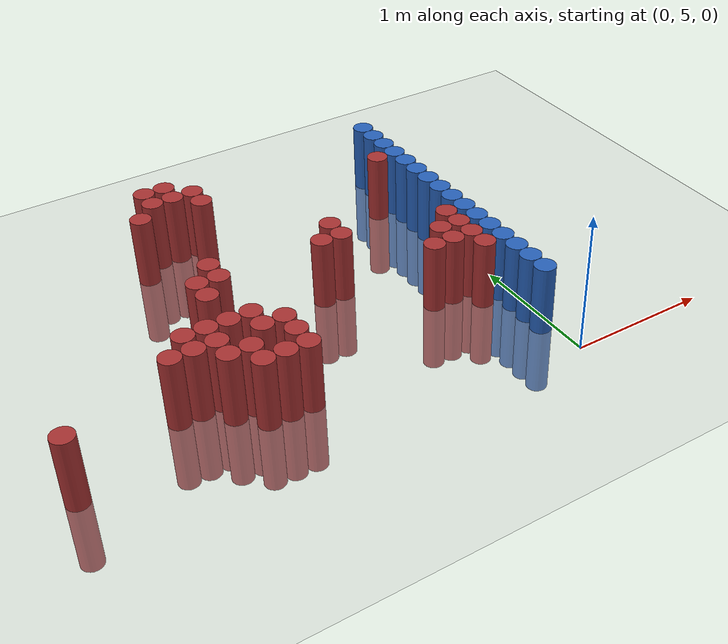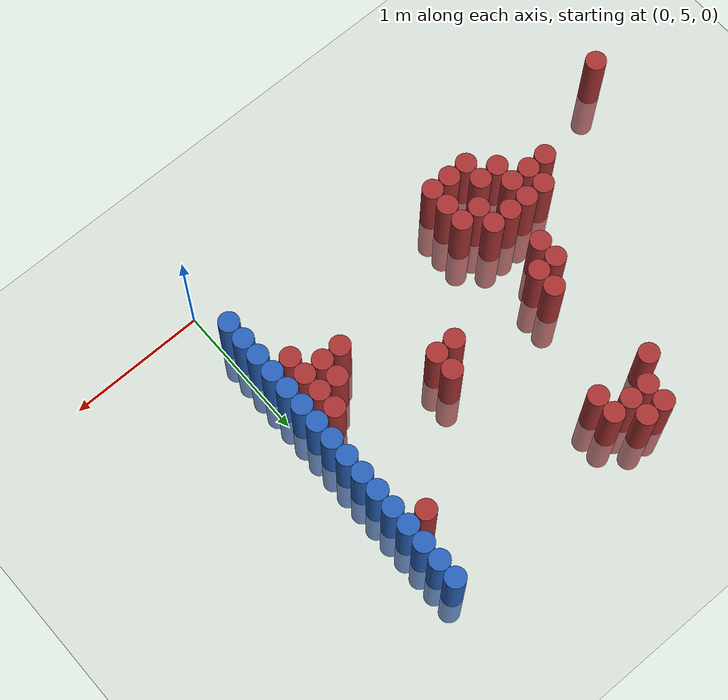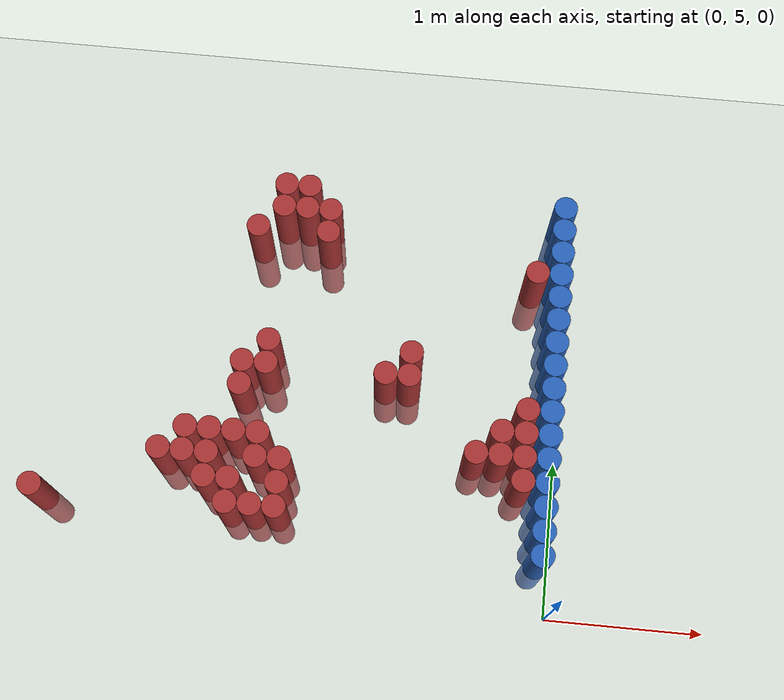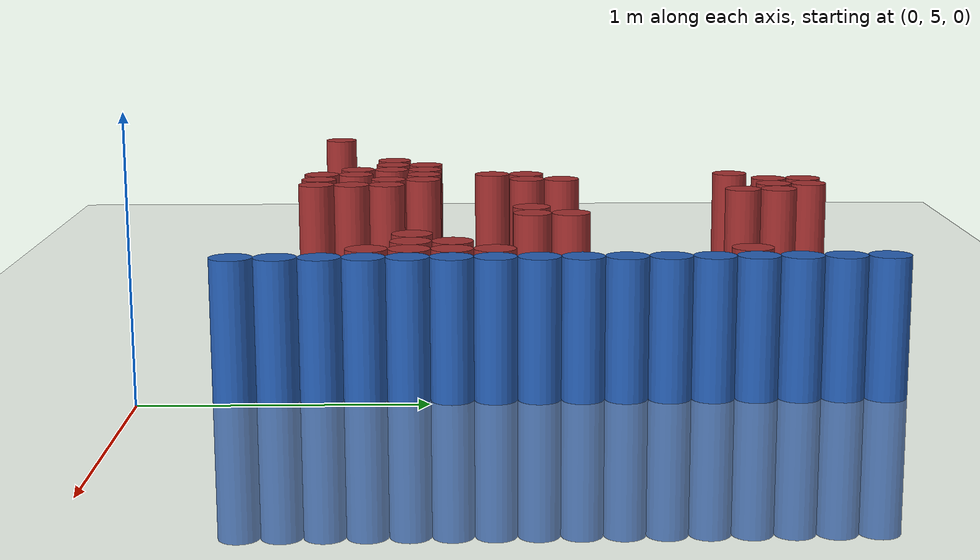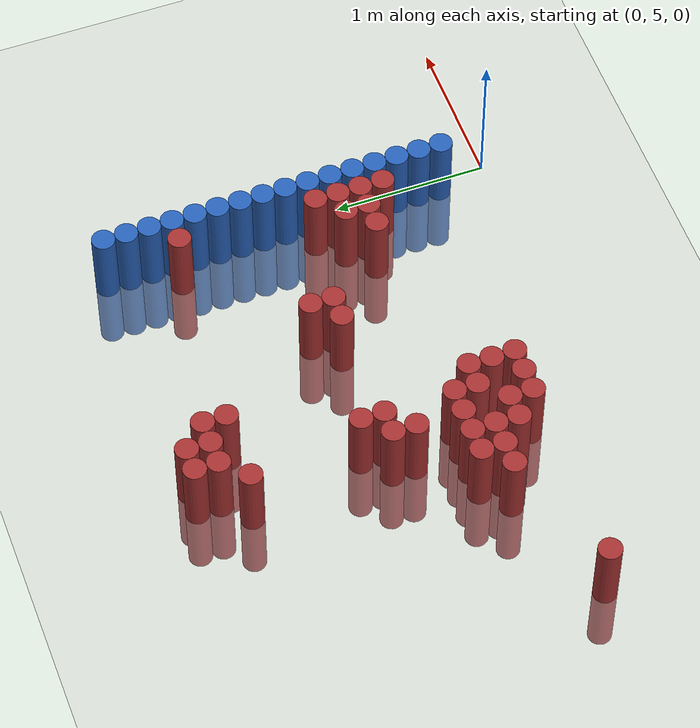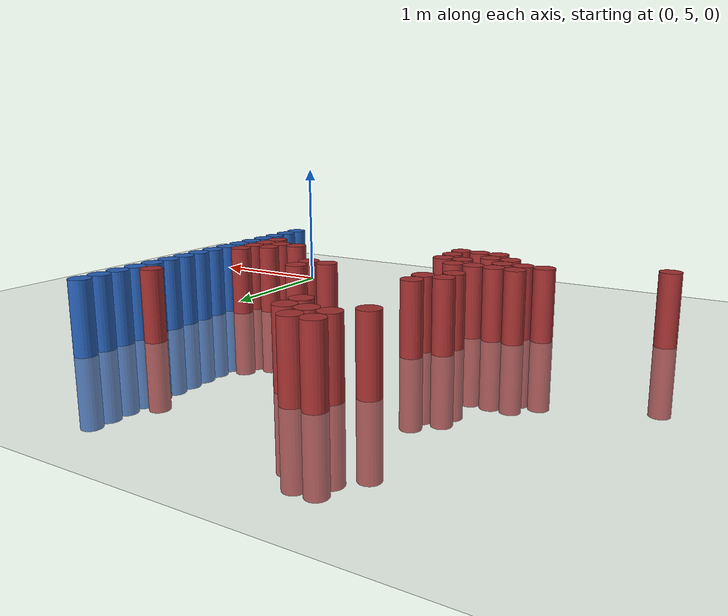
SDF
<sdf version="1.6">
 <world name="default">
  <model name="ground_plane">
   <static>1</static>
   <link name="link">
    <collision name="collision">
     <geometry><plane><normal>0 0 1</normal><size>100 100</size></plane></geometry>
     <surface><friction><ode><mu>100</mu><mu2>50</mu2></ode></friction></surface>
    </collision>
    <visual name="visual">
     <cast_shadows>0</cast_shadows>
     <geometry><plane><normal>0 0 1</normal><size>100 100</size></plane></geometry>
     <material>
      <script><uri>file://media/materials/scripts/gazebo.material</uri><name>Gazebo/Grey</name></script>
     </material>
    </visual>
   </link>
  </model>
  <model name="unit_cylinder_161">
   <static>1</static>
   <pose>-3.225000 5.475000 0.000000 0.000000 0.000000 0.000000</pose>
   <link name="link">
    <inertial>
     <mass>1</mass>
     <inertia><ixx>0.145833</ixx><ixy>0</ixy><ixz>0</ixz><iyy>0.145833</iyy><iyz>0</iyz><izz>0.125</izz></inertia>
    </inertial>
    <collision name="collision">
     <geometry><cylinder><radius>0.075000</radius><length>1</length></cylinder></geometry>
    </collision>
    <visual name="visual">
     <geometry><cylinder><radius>0.075000</radius><length>1</length></cylinder></geometry>
     <material>
      <ambient>0.648000 0.192000 0.192000 1</ambient>
      <diffuse>0.648000 0.192000 0.192000 1</diffuse>
     </material>
     <material>
      <script><name>Gazebo/Grey</name><uri>file://media/materials/scripts/gazebo.material</uri></script>
     </material>
    </visual>
   </link>
  </model>
  <model name="unit_cylinder_167">
   <static>1</static>
   <pose>-2.475000 5.775000 0.000000 0.000000 0.000000 0.000000</pose>
   <link name="link">
    <inertial>
     <mass>1</mass>
     <inertia><ixx>0.145833</ixx><ixy>0</ixy><ixz>0</ixz><iyy>0.145833</iyy><iyz>0</iyz><izz>0.125</izz></inertia>
    </inertial>
    <collision name="collision">
     <geometry><cylinder><radius>0.075000</radius><length>1</length></cylinder></geometry>
    </collision>
    <visual name="visual">
     <geometry><cylinder><radius>0.075000</radius><length>1</length></cylinder></geometry>
     <material>
      <ambient>0.648000 0.192000 0.192000 1</ambient>
      <diffuse>0.648000 0.192000 0.192000 1</diffuse>
     </material>
     <material>
      <script><name>Gazebo/Grey</name><uri>file://media/materials/scripts/gazebo.material</uri></script>
     </material>
    </visual>
   </link>
  </model>
  <model name="unit_cylinder_168">
   <static>1</static>
   <pose>-2.325000 5.775000 0.000000 0.000000 0.000000 0.000000</pose>
   <link name="link">
    <inertial>
     <mass>1</mass>
     <inertia><ixx>0.145833</ixx><ixy>0</ixy><ixz>0</ixz><iyy>0.145833</iyy><iyz>0</iyz><izz>0.125</izz></inertia>
    </inertial>
    <collision name="collision">
     <geometry><cylinder><radius>0.075000</radius><length>1</length></cylinder></geometry>
    </collision>
    <visual name="visual">
     <geometry><cylinder><radius>0.075000</radius><length>1</length></cylinder></geometry>
     <material>
      <ambient>0.648000 0.192000 0.192000 1</ambient>
      <diffuse>0.648000 0.192000 0.192000 1</diffuse>
     </material>
     <material>
      <script><name>Gazebo/Grey</name><uri>file://media/materials/scripts/gazebo.material</uri></script>
     </material>
    </visual>
   </link>
  </model>
  <model name="unit_cylinder_169">
   <static>1</static>
   <pose>-2.325000 5.925000 0.000000 0.000000 0.000000 0.000000</pose>
   <link name="link">
    <inertial>
     <mass>1</mass>
     <inertia><ixx>0.145833</ixx><ixy>0</ixy><ixz>0</ixz><iyy>0.145833</iyy><iyz>0</iyz><izz>0.125</izz></inertia>
    </inertial>
    <collision name="collision">
     <geometry><cylinder><radius>0.075000</radius><length>1</length></cylinder></geometry>
    </collision>
    <visual name="visual">
     <geometry><cylinder><radius>0.075000</radius><length>1</length></cylinder></geometry>
     <material>
      <ambient>0.648000 0.192000 0.192000 1</ambient>
      <diffuse>0.648000 0.192000 0.192000 1</diffuse>
     </material>
     <material>
      <script><name>Gazebo/Grey</name><uri>file://media/materials/scripts/gazebo.material</uri></script>
     </material>
    </visual>
   </link>
  </model>
  <model name="unit_cylinder_170">
   <static>1</static>
   <pose>-2.175000 5.625000 0.000000 0.000000 0.000000 0.000000</pose>
   <link name="link">
    <inertial>
     <mass>1</mass>
     <inertia><ixx>0.145833</ixx><ixy>0</ixy><ixz>0</ixz><iyy>0.145833</iyy><iyz>0</iyz><izz>0.125</izz></inertia>
    </inertial>
    <collision name="collision">
     <geometry><cylinder><radius>0.075000</radius><length>1</length></cylinder></geometry>
    </collision>
    <visual name="visual">
     <geometry><cylinder><radius>0.075000</radius><length>1</length></cylinder></geometry>
     <material>
      <ambient>0.648000 0.192000 0.192000 1</ambient>
      <diffuse>0.648000 0.192000 0.192000 1</diffuse>
     </material>
     <material>
      <script><name>Gazebo/Grey</name><uri>file://media/materials/scripts/gazebo.material</uri></script>
     </material>
    </visual>
   </link>
  </model>
  <model name="unit_cylinder_171">
   <static>1</static>
   <pose>-2.175000 5.775000 0.000000 0.000000 0.000000 0.000000</pose>
   <link name="link">
    <inertial>
     <mass>1</mass>
     <inertia><ixx>0.145833</ixx><ixy>0</ixy><ixz>0</ixz><iyy>0.145833</iyy><iyz>0</iyz><izz>0.125</izz></inertia>
    </inertial>
    <collision name="collision">
     <geometry><cylinder><radius>0.075000</radius><length>1</length></cylinder></geometry>
    </collision>
    <visual name="visual">
     <geometry><cylinder><radius>0.075000</radius><length>1</length></cylinder></geometry>
     <material>
      <ambient>0.648000 0.192000 0.192000 1</ambient>
      <diffuse>0.648000 0.192000 0.192000 1</diffuse>
     </material>
     <material>
      <script><name>Gazebo/Grey</name><uri>file://media/materials/scripts/gazebo.material</uri></script>
     </material>
    </visual>
   </link>
  </model>
  <model name="unit_cylinder_172">
   <static>1</static>
   <pose>-2.175000 5.925000 0.000000 0.000000 0.000000 0.000000</pose>
   <link name="link">
    <inertial>
     <mass>1</mass>
     <inertia><ixx>0.145833</ixx><ixy>0</ixy><ixz>0</ixz><iyy>0.145833</iyy><iyz>0</iyz><izz>0.125</izz></inertia>
    </inertial>
    <collision name="collision">
     <geometry><cylinder><radius>0.075000</radius><length>1</length></cylinder></geometry>
    </collision>
    <visual name="visual">
     <geometry><cylinder><radius>0.075000</radius><length>1</length></cylinder></geometry>
     <material>
      <ambient>0.648000 0.192000 0.192000 1</ambient>
      <diffuse>0.648000 0.192000 0.192000 1</diffuse>
     </material>
     <material>
      <script><name>Gazebo/Grey</name><uri>file://media/materials/scripts/gazebo.material</uri></script>
     </material>
    </visual>
   </link>
  </model>
  <model name="unit_cylinder_173">
   <static>1</static>
   <pose>-2.025000 5.475000 0.000000 0.000000 0.000000 0.000000</pose>
   <link name="link">
    <inertial>
     <mass>1</mass>
     <inertia><ixx>0.145833</ixx><ixy>0</ixy><ixz>0</ixz><iyy>0.145833</iyy><iyz>0</iyz><izz>0.125</izz></inertia>
    </inertial>
    <collision name="collision">
     <geometry><cylinder><radius>0.075000</radius><length>1</length></cylinder></geometry>
    </collision>
    <visual name="visual">
     <geometry><cylinder><radius>0.075000</radius><length>1</length></cylinder></geometry>
     <material>
      <ambient>0.648000 0.192000 0.192000 1</ambient>
      <diffuse>0.648000 0.192000 0.192000 1</diffuse>
     </material>
     <material>
      <script><name>Gazebo/Grey</name><uri>file://media/materials/scripts/gazebo.material</uri></script>
     </material>
    </visual>
   </link>
  </model>
  <model name="unit_cylinder_174">
   <static>1</static>
   <pose>-2.025000 5.625000 0.000000 0.000000 0.000000 0.000000</pose>
   <link name="link">
    <inertial>
     <mass>1</mass>
     <inertia><ixx>0.145833</ixx><ixy>0</ixy><ixz>0</ixz><iyy>0.145833</iyy><iyz>0</iyz><izz>0.125</izz></inertia>
    </inertial>
    <collision name="collision">
     <geometry><cylinder><radius>0.075000</radius><length>1</length></cylinder></geometry>
    </collision>
    <visual name="visual">
     <geometry><cylinder><radius>0.075000</radius><length>1</length></cylinder></geometry>
     <material>
      <ambient>0.648000 0.192000 0.192000 1</ambient>
      <diffuse>0.648000 0.192000 0.192000 1</diffuse>
     </material>
     <material>
      <script><name>Gazebo/Grey</name><uri>file://media/materials/scripts/gazebo.material</uri></script>
     </material>
    </visual>
   </link>
  </model>
  <model name="unit_cylinder_175">
   <static>1</static>
   <pose>-2.025000 5.925000 0.000000 0.000000 0.000000 0.000000</pose>
   <link name="link">
    <inertial>
     <mass>1</mass>
     <inertia><ixx>0.145833</ixx><ixy>0</ixy><ixz>0</ixz><iyy>0.145833</iyy><iyz>0</iyz><izz>0.125</izz></inertia>
    </inertial>
    <collision name="collision">
     <geometry><cylinder><radius>0.075000</radius><length>1</length></cylinder></geometry>
    </collision>
    <visual name="visual">
     <geometry><cylinder><radius>0.075000</radius><length>1</length></cylinder></geometry>
     <material>
      <ambient>0.648000 0.192000 0.192000 1</ambient>
      <diffuse>0.648000 0.192000 0.192000 1</diffuse>
     </material>
     <material>
      <script><name>Gazebo/Grey</name><uri>file://media/materials/scripts/gazebo.material</uri></script>
     </material>
    </visual>
   </link>
  </model>
  <model name="unit_cylinder_176">
   <static>1</static>
   <pose>-2.025000 6.225000 0.000000 0.000000 0.000000 0.000000</pose>
   <link name="link">
    <inertial>
     <mass>1</mass>
     <inertia><ixx>0.145833</ixx><ixy>0</ixy><ixz>0</ixz><iyy>0.145833</iyy><iyz>0</iyz><izz>0.125</izz></inertia>
    </inertial>
    <collision name="collision">
     <geometry><cylinder><radius>0.075000</radius><length>1</length></cylinder></geometry>
    </collision>
    <visual name="visual">
     <geometry><cylinder><radius>0.075000</radius><length>1</length></cylinder></geometry>
     <material>
      <ambient>0.648000 0.192000 0.192000 1</ambient>
      <diffuse>0.648000 0.192000 0.192000 1</diffuse>
     </material>
     <material>
      <script><name>Gazebo/Grey</name><uri>file://media/materials/scripts/gazebo.material</uri></script>
     </material>
    </visual>
   </link>
  </model>
  <model name="unit_cylinder_177">
   <static>1</static>
   <pose>-2.025000 6.375000 0.000000 0.000000 0.000000 0.000000</pose>
   <link name="link">
    <inertial>
     <mass>1</mass>
     <inertia><ixx>0.145833</ixx><ixy>0</ixy><ixz>0</ixz><iyy>0.145833</iyy><iyz>0</iyz><izz>0.125</izz></inertia>
    </inertial>
    <collision name="collision">
     <geometry><cylinder><radius>0.075000</radius><length>1</length></cylinder></geometry>
    </collision>
    <visual name="visual">
     <geometry><cylinder><radius>0.075000</radius><length>1</length></cylinder></geometry>
     <material>
      <ambient>0.648000 0.192000 0.192000 1</ambient>
      <diffuse>0.648000 0.192000 0.192000 1</diffuse>
     </material>
     <material>
      <script><name>Gazebo/Grey</name><uri>file://media/materials/scripts/gazebo.material</uri></script>
     </material>
    </visual>
   </link>
  </model>
  <model name="unit_cylinder_178">
   <static>1</static>
   <pose>-2.025000 7.275000 0.000000 0.000000 0.000000 0.000000</pose>
   <link name="link">
    <inertial>
     <mass>1</mass>
     <inertia><ixx>0.145833</ixx><ixy>0</ixy><ixz>0</ixz><iyy>0.145833</iyy><iyz>0</iyz><izz>0.125</izz></inertia>
    </inertial>
    <collision name="collision">
     <geometry><cylinder><radius>0.075000</radius><length>1</length></cylinder></geometry>
    </collision>
    <visual name="visual">
     <geometry><cylinder><radius>0.075000</radius><length>1</length></cylinder></geometry>
     <material>
      <ambient>0.648000 0.192000 0.192000 1</ambient>
      <diffuse>0.648000 0.192000 0.192000 1</diffuse>
     </material>
     <material>
      <script><name>Gazebo/Grey</name><uri>file://media/materials/scripts/gazebo.material</uri></script>
     </material>
    </visual>
   </link>
  </model>
  <model name="unit_cylinder_181">
   <static>1</static>
   <pose>-1.875000 5.475000 0.000000 0.000000 0.000000 0.000000</pose>
   <link name="link">
    <inertial>
     <mass>1</mass>
     <inertia><ixx>0.145833</ixx><ixy>0</ixy><ixz>0</ixz><iyy>0.145833</iyy><iyz>0</iyz><izz>0.125</izz></inertia>
    </inertial>
    <collision name="collision">
     <geometry><cylinder><radius>0.075000</radius><length>1</length></cylinder></geometry>
    </collision>
    <visual name="visual">
     <geometry><cylinder><radius>0.075000</radius><length>1</length></cylinder></geometry>
     <material>
      <ambient>0.648000 0.192000 0.192000 1</ambient>
      <diffuse>0.648000 0.192000 0.192000 1</diffuse>
     </material>
     <material>
      <script><name>Gazebo/Grey</name><uri>file://media/materials/scripts/gazebo.material</uri></script>
     </material>
    </visual>
   </link>
  </model>
  <model name="unit_cylinder_182">
   <static>1</static>
   <pose>-1.875000 5.775000 0.000000 0.000000 0.000000 0.000000</pose>
   <link name="link">
    <inertial>
     <mass>1</mass>
     <inertia><ixx>0.145833</ixx><ixy>0</ixy><ixz>0</ixz><iyy>0.145833</iyy><iyz>0</iyz><izz>0.125</izz></inertia>
    </inertial>
    <collision name="collision">
     <geometry><cylinder><radius>0.075000</radius><length>1</length></cylinder></geometry>
    </collision>
    <visual name="visual">
     <geometry><cylinder><radius>0.075000</radius><length>1</length></cylinder></geometry>
     <material>
      <ambient>0.648000 0.192000 0.192000 1</ambient>
      <diffuse>0.648000 0.192000 0.192000 1</diffuse>
     </material>
     <material>
      <script><name>Gazebo/Grey</name><uri>file://media/materials/scripts/gazebo.material</uri></script>
     </material>
    </visual>
   </link>
  </model>
  <model name="unit_cylinder_183">
   <static>1</static>
   <pose>-1.875000 5.925000 0.000000 0.000000 0.000000 0.000000</pose>
   <link name="link">
    <inertial>
     <mass>1</mass>
     <inertia><ixx>0.145833</ixx><ixy>0</ixy><ixz>0</ixz><iyy>0.145833</iyy><iyz>0</iyz><izz>0.125</izz></inertia>
    </inertial>
    <collision name="collision">
     <geometry><cylinder><radius>0.075000</radius><length>1</length></cylinder></geometry>
    </collision>
    <visual name="visual">
     <geometry><cylinder><radius>0.075000</radius><length>1</length></cylinder></geometry>
     <material>
      <ambient>0.648000 0.192000 0.192000 1</ambient>
      <diffuse>0.648000 0.192000 0.192000 1</diffuse>
     </material>
     <material>
      <script><name>Gazebo/Grey</name><uri>file://media/materials/scripts/gazebo.material</uri></script>
     </material>
    </visual>
   </link>
  </model>
  <model name="unit_cylinder_184">
   <static>1</static>
   <pose>-1.875000 6.375000 0.000000 0.000000 0.000000 0.000000</pose>
   <link name="link">
    <inertial>
     <mass>1</mass>
     <inertia><ixx>0.145833</ixx><ixy>0</ixy><ixz>0</ixz><iyy>0.145833</iyy><iyz>0</iyz><izz>0.125</izz></inertia>
    </inertial>
    <collision name="collision">
     <geometry><cylinder><radius>0.075000</radius><length>1</length></cylinder></geometry>
    </collision>
    <visual name="visual">
     <geometry><cylinder><radius>0.075000</radius><length>1</length></cylinder></geometry>
     <material>
      <ambient>0.648000 0.192000 0.192000 1</ambient>
      <diffuse>0.648000 0.192000 0.192000 1</diffuse>
     </material>
     <material>
      <script><name>Gazebo/Grey</name><uri>file://media/materials/scripts/gazebo.material</uri></script>
     </material>
    </visual>
   </link>
  </model>
  <model name="unit_cylinder_185">
   <static>1</static>
   <pose>-1.875000 6.525000 0.000000 0.000000 0.000000 0.000000</pose>
   <link name="link">
    <inertial>
     <mass>1</mass>
     <inertia><ixx>0.145833</ixx><ixy>0</ixy><ixz>0</ixz><iyy>0.145833</iyy><iyz>0</iyz><izz>0.125</izz></inertia>
    </inertial>
    <collision name="collision">
     <geometry><cylinder><radius>0.075000</radius><length>1</length></cylinder></geometry>
    </collision>
    <visual name="visual">
     <geometry><cylinder><radius>0.075000</radius><length>1</length></cylinder></geometry>
     <material>
      <ambient>0.648000 0.192000 0.192000 1</ambient>
      <diffuse>0.648000 0.192000 0.192000 1</diffuse>
     </material>
     <material>
      <script><name>Gazebo/Grey</name><uri>file://media/materials/scripts/gazebo.material</uri></script>
     </material>
    </visual>
   </link>
  </model>
  <model name="unit_cylinder_186">
   <static>1</static>
   <pose>-1.875000 7.425000 0.000000 0.000000 0.000000 0.000000</pose>
   <link name="link">
    <inertial>
     <mass>1</mass>
     <inertia><ixx>0.145833</ixx><ixy>0</ixy><ixz>0</ixz><iyy>0.145833</iyy><iyz>0</iyz><izz>0.125</izz></inertia>
    </inertial>
    <collision name="collision">
     <geometry><cylinder><radius>0.075000</radius><length>1</length></cylinder></geometry>
    </collision>
    <visual name="visual">
     <geometry><cylinder><radius>0.075000</radius><length>1</length></cylinder></geometry>
     <material>
      <ambient>0.648000 0.192000 0.192000 1</ambient>
      <diffuse>0.648000 0.192000 0.192000 1</diffuse>
     </material>
     <material>
      <script><name>Gazebo/Grey</name><uri>file://media/materials/scripts/gazebo.material</uri></script>
     </material>
    </visual>
   </link>
  </model>
  <model name="unit_cylinder_187">
   <static>1</static>
   <pose>-1.875000 7.575000 0.000000 0.000000 0.000000 0.000000</pose>
   <link name="link">
    <inertial>
     <mass>1</mass>
     <inertia><ixx>0.145833</ixx><ixy>0</ixy><ixz>0</ixz><iyy>0.145833</iyy><iyz>0</iyz><izz>0.125</izz></inertia>
    </inertial>
    <collision name="collision">
     <geometry><cylinder><radius>0.075000</radius><length>1</length></cylinder></geometry>
    </collision>
    <visual name="visual">
     <geometry><cylinder><radius>0.075000</radius><length>1</length></cylinder></geometry>
     <material>
      <ambient>0.648000 0.192000 0.192000 1</ambient>
      <diffuse>0.648000 0.192000 0.192000 1</diffuse>
     </material>
     <material>
      <script><name>Gazebo/Grey</name><uri>file://media/materials/scripts/gazebo.material</uri></script>
     </material>
    </visual>
   </link>
  </model>
  <model name="unit_cylinder_192">
   <static>1</static>
   <pose>-1.725000 5.475000 0.000000 0.000000 0.000000 0.000000</pose>
   <link name="link">
    <inertial>
     <mass>1</mass>
     <inertia><ixx>0.145833</ixx><ixy>0</ixy><ixz>0</ixz><iyy>0.145833</iyy><iyz>0</iyz><izz>0.125</izz></inertia>
    </inertial>
    <collision name="collision">
     <geometry><cylinder><radius>0.075000</radius><length>1</length></cylinder></geometry>
    </collision>
    <visual name="visual">
     <geometry><cylinder><radius>0.075000</radius><length>1</length></cylinder></geometry>
     <material>
      <ambient>0.648000 0.192000 0.192000 1</ambient>
      <diffuse>0.648000 0.192000 0.192000 1</diffuse>
     </material>
     <material>
      <script><name>Gazebo/Grey</name><uri>file://media/materials/scripts/gazebo.material</uri></script>
     </material>
    </visual>
   </link>
  </model>
  <model name="unit_cylinder_193">
   <static>1</static>
   <pose>-1.725000 5.625000 0.000000 0.000000 0.000000 0.000000</pose>
   <link name="link">
    <inertial>
     <mass>1</mass>
     <inertia><ixx>0.145833</ixx><ixy>0</ixy><ixz>0</ixz><iyy>0.145833</iyy><iyz>0</iyz><izz>0.125</izz></inertia>
    </inertial>
    <collision name="collision">
     <geometry><cylinder><radius>0.075000</radius><length>1</length></cylinder></geometry>
    </collision>
    <visual name="visual">
     <geometry><cylinder><radius>0.075000</radius><length>1</length></cylinder></geometry>
     <material>
      <ambient>0.648000 0.192000 0.192000 1</ambient>
      <diffuse>0.648000 0.192000 0.192000 1</diffuse>
     </material>
     <material>
      <script><name>Gazebo/Grey</name><uri>file://media/materials/scripts/gazebo.material</uri></script>
     </material>
    </visual>
   </link>
  </model>
  <model name="unit_cylinder_194">
   <static>1</static>
   <pose>-1.725000 5.775000 0.000000 0.000000 0.000000 0.000000</pose>
   <link name="link">
    <inertial>
     <mass>1</mass>
     <inertia><ixx>0.145833</ixx><ixy>0</ixy><ixz>0</ixz><iyy>0.145833</iyy><iyz>0</iyz><izz>0.125</izz></inertia>
    </inertial>
    <collision name="collision">
     <geometry><cylinder><radius>0.075000</radius><length>1</length></cylinder></geometry>
    </collision>
    <visual name="visual">
     <geometry><cylinder><radius>0.075000</radius><length>1</length></cylinder></geometry>
     <material>
      <ambient>0.648000 0.192000 0.192000 1</ambient>
      <diffuse>0.648000 0.192000 0.192000 1</diffuse>
     </material>
     <material>
      <script><name>Gazebo/Grey</name><uri>file://media/materials/scripts/gazebo.material</uri></script>
     </material>
    </visual>
   </link>
  </model>
  <model name="unit_cylinder_195">
   <static>1</static>
   <pose>-1.725000 7.425000 0.000000 0.000000 0.000000 0.000000</pose>
   <link name="link">
    <inertial>
     <mass>1</mass>
     <inertia><ixx>0.145833</ixx><ixy>0</ixy><ixz>0</ixz><iyy>0.145833</iyy><iyz>0</iyz><izz>0.125</izz></inertia>
    </inertial>
    <collision name="collision">
     <geometry><cylinder><radius>0.075000</radius><length>1</length></cylinder></geometry>
    </collision>
    <visual name="visual">
     <geometry><cylinder><radius>0.075000</radius><length>1</length></cylinder></geometry>
     <material>
      <ambient>0.648000 0.192000 0.192000 1</ambient>
      <diffuse>0.648000 0.192000 0.192000 1</diffuse>
     </material>
     <material>
      <script><name>Gazebo/Grey</name><uri>file://media/materials/scripts/gazebo.material</uri></script>
     </material>
    </visual>
   </link>
  </model>
  <model name="unit_cylinder_196">
   <static>1</static>
   <pose>-1.725000 7.575000 0.000000 0.000000 0.000000 0.000000</pose>
   <link name="link">
    <inertial>
     <mass>1</mass>
     <inertia><ixx>0.145833</ixx><ixy>0</ixy><ixz>0</ixz><iyy>0.145833</iyy><iyz>0</iyz><izz>0.125</izz></inertia>
    </inertial>
    <collision name="collision">
     <geometry><cylinder><radius>0.075000</radius><length>1</length></cylinder></geometry>
    </collision>
    <visual name="visual">
     <geometry><cylinder><radius>0.075000</radius><length>1</length></cylinder></geometry>
     <material>
      <ambient>0.648000 0.192000 0.192000 1</ambient>
      <diffuse>0.648000 0.192000 0.192000 1</diffuse>
     </material>
     <material>
      <script><name>Gazebo/Grey</name><uri>file://media/materials/scripts/gazebo.material</uri></script>
     </material>
    </visual>
   </link>
  </model>
  <model name="unit_cylinder_198">
   <static>1</static>
   <pose>-1.575000 7.275000 0.000000 0.000000 0.000000 0.000000</pose>
   <link name="link">
    <inertial>
     <mass>1</mass>
     <inertia><ixx>0.145833</ixx><ixy>0</ixy><ixz>0</ixz><iyy>0.145833</iyy><iyz>0</iyz><izz>0.125</izz></inertia>
    </inertial>
    <collision name="collision">
     <geometry><cylinder><radius>0.075000</radius><length>1</length></cylinder></geometry>
    </collision>
    <visual name="visual">
     <geometry><cylinder><radius>0.075000</radius><length>1</length></cylinder></geometry>
     <material>
      <ambient>0.648000 0.192000 0.192000 1</ambient>
      <diffuse>0.648000 0.192000 0.192000 1</diffuse>
     </material>
     <material>
      <script><name>Gazebo/Grey</name><uri>file://media/materials/scripts/gazebo.material</uri></script>
     </material>
    </visual>
   </link>
  </model>
  <model name="unit_cylinder_199">
   <static>1</static>
   <pose>-1.575000 7.425000 0.000000 0.000000 0.000000 0.000000</pose>
   <link name="link">
    <inertial>
     <mass>1</mass>
     <inertia><ixx>0.145833</ixx><ixy>0</ixy><ixz>0</ixz><iyy>0.145833</iyy><iyz>0</iyz><izz>0.125</izz></inertia>
    </inertial>
    <collision name="collision">
     <geometry><cylinder><radius>0.075000</radius><length>1</length></cylinder></geometry>
    </collision>
    <visual name="visual">
     <geometry><cylinder><radius>0.075000</radius><length>1</length></cylinder></geometry>
     <material>
      <ambient>0.648000 0.192000 0.192000 1</ambient>
      <diffuse>0.648000 0.192000 0.192000 1</diffuse>
     </material>
     <material>
      <script><name>Gazebo/Grey</name><uri>file://media/materials/scripts/gazebo.material</uri></script>
     </material>
    </visual>
   </link>
  </model>
  <model name="unit_cylinder_207">
   <static>1</static>
   <pose>-1.125000 6.375000 0.000000 0.000000 0.000000 0.000000</pose>
   <link name="link">
    <inertial>
     <mass>1</mass>
     <inertia><ixx>0.145833</ixx><ixy>0</ixy><ixz>0</ixz><iyy>0.145833</iyy><iyz>0</iyz><izz>0.125</izz></inertia>
    </inertial>
    <collision name="collision">
     <geometry><cylinder><radius>0.075000</radius><length>1</length></cylinder></geometry>
    </collision>
    <visual name="visual">
     <geometry><cylinder><radius>0.075000</radius><length>1</length></cylinder></geometry>
     <material>
      <ambient>0.648000 0.192000 0.192000 1</ambient>
      <diffuse>0.648000 0.192000 0.192000 1</diffuse>
     </material>
     <material>
      <script><name>Gazebo/Grey</name><uri>file://media/materials/scripts/gazebo.material</uri></script>
     </material>
    </visual>
   </link>
  </model>
  <model name="unit_cylinder_211">
   <static>1</static>
   <pose>-0.975000 6.375000 0.000000 0.000000 0.000000 0.000000</pose>
   <link name="link">
    <inertial>
     <mass>1</mass>
     <inertia><ixx>0.145833</ixx><ixy>0</ixy><ixz>0</ixz><iyy>0.145833</iyy><iyz>0</iyz><izz>0.125</izz></inertia>
    </inertial>
    <collision name="collision">
     <geometry><cylinder><radius>0.075000</radius><length>1</length></cylinder></geometry>
    </collision>
    <visual name="visual">
     <geometry><cylinder><radius>0.075000</radius><length>1</length></cylinder></geometry>
     <material>
      <ambient>0.648000 0.192000 0.192000 1</ambient>
      <diffuse>0.648000 0.192000 0.192000 1</diffuse>
     </material>
     <material>
      <script><name>Gazebo/Grey</name><uri>file://media/materials/scripts/gazebo.material</uri></script>
     </material>
    </visual>
   </link>
  </model>
  <model name="unit_cylinder_212">
   <static>1</static>
   <pose>-0.975000 6.525000 0.000000 0.000000 0.000000 0.000000</pose>
   <link name="link">
    <inertial>
     <mass>1</mass>
     <inertia><ixx>0.145833</ixx><ixy>0</ixy><ixz>0</ixz><iyy>0.145833</iyy><iyz>0</iyz><izz>0.125</izz></inertia>
    </inertial>
    <collision name="collision">
     <geometry><cylinder><radius>0.075000</radius><length>1</length></cylinder></geometry>
    </collision>
    <visual name="visual">
     <geometry><cylinder><radius>0.075000</radius><length>1</length></cylinder></geometry>
     <material>
      <ambient>0.648000 0.192000 0.192000 1</ambient>
      <diffuse>0.648000 0.192000 0.192000 1</diffuse>
     </material>
     <material>
      <script><name>Gazebo/Grey</name><uri>file://media/materials/scripts/gazebo.material</uri></script>
     </material>
    </visual>
   </link>
  </model>
  <model name="unit_cylinder_223">
   <static>1</static>
   <pose>-0.525000 5.925000 0.000000 0.000000 0.000000 0.000000</pose>
   <link name="link">
    <inertial>
     <mass>1</mass>
     <inertia><ixx>0.145833</ixx><ixy>0</ixy><ixz>0</ixz><iyy>0.145833</iyy><iyz>0</iyz><izz>0.125</izz></inertia>
    </inertial>
    <collision name="collision">
     <geometry><cylinder><radius>0.075000</radius><length>1</length></cylinder></geometry>
    </collision>
    <visual name="visual">
     <geometry><cylinder><radius>0.075000</radius><length>1</length></cylinder></geometry>
     <material>
      <ambient>0.648000 0.192000 0.192000 1</ambient>
      <diffuse>0.648000 0.192000 0.192000 1</diffuse>
     </material>
     <material>
      <script><name>Gazebo/Grey</name><uri>file://media/materials/scripts/gazebo.material</uri></script>
     </material>
    </visual>
   </link>
  </model>
  <model name="unit_cylinder_226">
   <static>1</static>
   <pose>-0.375000 5.925000 0.000000 0.000000 0.000000 0.000000</pose>
   <link name="link">
    <inertial>
     <mass>1</mass>
     <inertia><ixx>0.145833</ixx><ixy>0</ixy><ixz>0</ixz><iyy>0.145833</iyy><iyz>0</iyz><izz>0.125</izz></inertia>
    </inertial>
    <collision name="collision">
     <geometry><cylinder><radius>0.075000</radius><length>1</length></cylinder></geometry>
    </collision>
    <visual name="visual">
     <geometry><cylinder><radius>0.075000</radius><length>1</length></cylinder></geometry>
     <material>
      <ambient>0.648000 0.192000 0.192000 1</ambient>
      <diffuse>0.648000 0.192000 0.192000 1</diffuse>
     </material>
     <material>
      <script><name>Gazebo/Grey</name><uri>file://media/materials/scripts/gazebo.material</uri></script>
     </material>
    </visual>
   </link>
  </model>
  <model name="unit_cylinder_227">
   <static>1</static>
   <pose>-0.375000 6.075000 0.000000 0.000000 0.000000 0.000000</pose>
   <link name="link">
    <inertial>
     <mass>1</mass>
     <inertia><ixx>0.145833</ixx><ixy>0</ixy><ixz>0</ixz><iyy>0.145833</iyy><iyz>0</iyz><izz>0.125</izz></inertia>
    </inertial>
    <collision name="collision">
     <geometry><cylinder><radius>0.075000</radius><length>1</length></cylinder></geometry>
    </collision>
    <visual name="visual">
     <geometry><cylinder><radius>0.075000</radius><length>1</length></cylinder></geometry>
     <material>
      <ambient>0.648000 0.192000 0.192000 1</ambient>
      <diffuse>0.648000 0.192000 0.192000 1</diffuse>
     </material>
     <material>
      <script><name>Gazebo/Grey</name><uri>file://media/materials/scripts/gazebo.material</uri></script>
     </material>
    </visual>
   </link>
  </model>
  <model name="unit_cylinder_230">
   <static>1</static>
   <pose>-0.225000 5.775000 0.000000 0.000000 0.000000 0.000000</pose>
   <link name="link">
    <inertial>
     <mass>1</mass>
     <inertia><ixx>0.145833</ixx><ixy>0</ixy><ixz>0</ixz><iyy>0.145833</iyy><iyz>0</iyz><izz>0.125</izz></inertia>
    </inertial>
    <collision name="collision">
     <geometry><cylinder><radius>0.075000</radius><length>1</length></cylinder></geometry>
    </collision>
    <visual name="visual">
     <geometry><cylinder><radius>0.075000</radius><length>1</length></cylinder></geometry>
     <material>
      <ambient>0.648000 0.192000 0.192000 1</ambient>
      <diffuse>0.648000 0.192000 0.192000 1</diffuse>
     </material>
     <material>
      <script><name>Gazebo/Grey</name><uri>file://media/materials/scripts/gazebo.material</uri></script>
     </material>
    </visual>
   </link>
  </model>
  <model name="unit_cylinder_231">
   <static>1</static>
   <pose>-0.225000 5.925000 0.000000 0.000000 0.000000 0.000000</pose>
   <link name="link">
    <inertial>
     <mass>1</mass>
     <inertia><ixx>0.145833</ixx><ixy>0</ixy><ixz>0</ixz><iyy>0.145833</iyy><iyz>0</iyz><izz>0.125</izz></inertia>
    </inertial>
    <collision name="collision">
     <geometry><cylinder><radius>0.075000</radius><length>1</length></cylinder></geometry>
    </collision>
    <visual name="visual">
     <geometry><cylinder><radius>0.075000</radius><length>1</length></cylinder></geometry>
     <material>
      <ambient>0.648000 0.192000 0.192000 1</ambient>
      <diffuse>0.648000 0.192000 0.192000 1</diffuse>
     </material>
     <material>
      <script><name>Gazebo/Grey</name><uri>file://media/materials/scripts/gazebo.material</uri></script>
     </material>
    </visual>
   </link>
  </model>
  <model name="unit_cylinder_232">
   <static>1</static>
   <pose>-0.225000 6.075000 0.000000 0.000000 0.000000 0.000000</pose>
   <link name="link">
    <inertial>
     <mass>1</mass>
     <inertia><ixx>0.145833</ixx><ixy>0</ixy><ixz>0</ixz><iyy>0.145833</iyy><iyz>0</iyz><izz>0.125</izz></inertia>
    </inertial>
    <collision name="collision">
     <geometry><cylinder><radius>0.075000</radius><length>1</length></cylinder></geometry>
    </collision>
    <visual name="visual">
     <geometry><cylinder><radius>0.075000</radius><length>1</length></cylinder></geometry>
     <material>
      <ambient>0.648000 0.192000 0.192000 1</ambient>
      <diffuse>0.648000 0.192000 0.192000 1</diffuse>
     </material>
     <material>
      <script><name>Gazebo/Grey</name><uri>file://media/materials/scripts/gazebo.material</uri></script>
     </material>
    </visual>
   </link>
  </model>
  <model name="unit_cylinder_233">
   <static>1</static>
   <pose>-0.225000 6.225000 0.000000 0.000000 0.000000 0.000000</pose>
   <link name="link">
    <inertial>
     <mass>1</mass>
     <inertia><ixx>0.145833</ixx><ixy>0</ixy><ixz>0</ixz><iyy>0.145833</iyy><iyz>0</iyz><izz>0.125</izz></inertia>
    </inertial>
    <collision name="collision">
     <geometry><cylinder><radius>0.075000</radius><length>1</length></cylinder></geometry>
    </collision>
    <visual name="visual">
     <geometry><cylinder><radius>0.075000</radius><length>1</length></cylinder></geometry>
     <material>
      <ambient>0.648000 0.192000 0.192000 1</ambient>
      <diffuse>0.648000 0.192000 0.192000 1</diffuse>
     </material>
     <material>
      <script><name>Gazebo/Grey</name><uri>file://media/materials/scripts/gazebo.material</uri></script>
     </material>
    </visual>
   </link>
  </model>
  <model name="unit_cylinder_234">
   <static>1</static>
   <pose>-0.225000 7.125000 0.000000 0.000000 0.000000 0.000000</pose>
   <link name="link">
    <inertial>
     <mass>1</mass>
     <inertia><ixx>0.145833</ixx><ixy>0</ixy><ixz>0</ixz><iyy>0.145833</iyy><iyz>0</iyz><izz>0.125</izz></inertia>
    </inertial>
    <collision name="collision">
     <geometry><cylinder><radius>0.075000</radius><length>1</length></cylinder></geometry>
    </collision>
    <visual name="visual">
     <geometry><cylinder><radius>0.075000</radius><length>1</length></cylinder></geometry>
     <material>
      <ambient>0.648000 0.192000 0.192000 1</ambient>
      <diffuse>0.648000 0.192000 0.192000 1</diffuse>
     </material>
     <material>
      <script><name>Gazebo/Grey</name><uri>file://media/materials/scripts/gazebo.material</uri></script>
     </material>
    </visual>
   </link>
  </model>
  <model name="unit_cylinder_243">
   <static>1</static>
   <pose>-0.075000 5.325000 0.000000 0.000000 0.000000 0.000000</pose>
   <link name="link">
    <inertial>
     <mass>1</mass>
     <inertia><ixx>0.145833</ixx><ixy>0</ixy><ixz>0</ixz><iyy>0.145833</iyy><iyz>0</iyz><izz>0.125</izz></inertia>
    </inertial>
    <collision name="collision">
     <geometry><cylinder><radius>0.075000</radius><length>1</length></cylinder></geometry>
    </collision>
    <visual name="visual">
     <geometry><cylinder><radius>0.075000</radius><length>1</length></cylinder></geometry>
     <material>
      <ambient>0.152000 0.379000 0.720000 1</ambient>
      <diffuse>0.152000 0.379000 0.720000 1</diffuse>
     </material>
     <material>
      <script><name>Gazebo/Grey</name><uri>file://media/materials/scripts/gazebo.material</uri></script>
     </material>
    </visual>
   </link>
  </model>
  <model name="unit_cylinder_244">
   <static>1</static>
   <pose>-0.075000 5.475000 0.000000 0.000000 0.000000 0.000000</pose>
   <link name="link">
    <inertial>
     <mass>1</mass>
     <inertia><ixx>0.145833</ixx><ixy>0</ixy><ixz>0</ixz><iyy>0.145833</iyy><iyz>0</iyz><izz>0.125</izz></inertia>
    </inertial>
    <collision name="collision">
     <geometry><cylinder><radius>0.075000</radius><length>1</length></cylinder></geometry>
    </collision>
    <visual name="visual">
     <geometry><cylinder><radius>0.075000</radius><length>1</length></cylinder></geometry>
     <material>
      <ambient>0.152000 0.379000 0.720000 1</ambient>
      <diffuse>0.152000 0.379000 0.720000 1</diffuse>
     </material>
     <material>
      <script><name>Gazebo/Grey</name><uri>file://media/materials/scripts/gazebo.material</uri></script>
     </material>
    </visual>
   </link>
  </model>
  <model name="unit_cylinder_245">
   <static>1</static>
   <pose>-0.075000 5.625000 0.000000 0.000000 0.000000 0.000000</pose>
   <link name="link">
    <inertial>
     <mass>1</mass>
     <inertia><ixx>0.145833</ixx><ixy>0</ixy><ixz>0</ixz><iyy>0.145833</iyy><iyz>0</iyz><izz>0.125</izz></inertia>
    </inertial>
    <collision name="collision">
     <geometry><cylinder><radius>0.075000</radius><length>1</length></cylinder></geometry>
    </collision>
    <visual name="visual">
     <geometry><cylinder><radius>0.075000</radius><length>1</length></cylinder></geometry>
     <material>
      <ambient>0.152000 0.379000 0.720000 1</ambient>
      <diffuse>0.152000 0.379000 0.720000 1</diffuse>
     </material>
     <material>
      <script><name>Gazebo/Grey</name><uri>file://media/materials/scripts/gazebo.material</uri></script>
     </material>
    </visual>
   </link>
  </model>
  <model name="unit_cylinder_246">
   <static>1</static>
   <pose>-0.075000 5.775000 0.000000 0.000000 0.000000 0.000000</pose>
   <link name="link">
    <inertial>
     <mass>1</mass>
     <inertia><ixx>0.145833</ixx><ixy>0</ixy><ixz>0</ixz><iyy>0.145833</iyy><iyz>0</iyz><izz>0.125</izz></inertia>
    </inertial>
    <collision name="collision">
     <geometry><cylinder><radius>0.075000</radius><length>1</length></cylinder></geometry>
    </collision>
    <visual name="visual">
     <geometry><cylinder><radius>0.075000</radius><length>1</length></cylinder></geometry>
     <material>
      <ambient>0.152000 0.379000 0.720000 1</ambient>
      <diffuse>0.152000 0.379000 0.720000 1</diffuse>
     </material>
     <material>
      <script><name>Gazebo/Grey</name><uri>file://media/materials/scripts/gazebo.material</uri></script>
     </material>
    </visual>
   </link>
  </model>
  <model name="unit_cylinder_247">
   <static>1</static>
   <pose>-0.075000 5.925000 0.000000 0.000000 0.000000 0.000000</pose>
   <link name="link">
    <inertial>
     <mass>1</mass>
     <inertia><ixx>0.145833</ixx><ixy>0</ixy><ixz>0</ixz><iyy>0.145833</iyy><iyz>0</iyz><izz>0.125</izz></inertia>
    </inertial>
    <collision name="collision">
     <geometry><cylinder><radius>0.075000</radius><length>1</length></cylinder></geometry>
    </collision>
    <visual name="visual">
     <geometry><cylinder><radius>0.075000</radius><length>1</length></cylinder></geometry>
     <material>
      <ambient>0.152000 0.379000 0.720000 1</ambient>
      <diffuse>0.152000 0.379000 0.720000 1</diffuse>
     </material>
     <material>
      <script><name>Gazebo/Grey</name><uri>file://media/materials/scripts/gazebo.material</uri></script>
     </material>
    </visual>
   </link>
  </model>
  <model name="unit_cylinder_248">
   <static>1</static>
   <pose>-0.075000 6.075000 0.000000 0.000000 0.000000 0.000000</pose>
   <link name="link">
    <inertial>
     <mass>1</mass>
     <inertia><ixx>0.145833</ixx><ixy>0</ixy><ixz>0</ixz><iyy>0.145833</iyy><iyz>0</iyz><izz>0.125</izz></inertia>
    </inertial>
    <collision name="collision">
     <geometry><cylinder><radius>0.075000</radius><length>1</length></cylinder></geometry>
    </collision>
    <visual name="visual">
     <geometry><cylinder><radius>0.075000</radius><length>1</length></cylinder></geometry>
     <material>
      <ambient>0.152000 0.379000 0.720000 1</ambient>
      <diffuse>0.152000 0.379000 0.720000 1</diffuse>
     </material>
     <material>
      <script><name>Gazebo/Grey</name><uri>file://media/materials/scripts/gazebo.material</uri></script>
     </material>
    </visual>
   </link>
  </model>
  <model name="unit_cylinder_249">
   <static>1</static>
   <pose>-0.075000 6.225000 0.000000 0.000000 0.000000 0.000000</pose>
   <link name="link">
    <inertial>
     <mass>1</mass>
     <inertia><ixx>0.145833</ixx><ixy>0</ixy><ixz>0</ixz><iyy>0.145833</iyy><iyz>0</iyz><izz>0.125</izz></inertia>
    </inertial>
    <collision name="collision">
     <geometry><cylinder><radius>0.075000</radius><length>1</length></cylinder></geometry>
    </collision>
    <visual name="visual">
     <geometry><cylinder><radius>0.075000</radius><length>1</length></cylinder></geometry>
     <material>
      <ambient>0.152000 0.379000 0.720000 1</ambient>
      <diffuse>0.152000 0.379000 0.720000 1</diffuse>
     </material>
     <material>
      <script><name>Gazebo/Grey</name><uri>file://media/materials/scripts/gazebo.material</uri></script>
     </material>
    </visual>
   </link>
  </model>
  <model name="unit_cylinder_250">
   <static>1</static>
   <pose>-0.075000 6.375000 0.000000 0.000000 0.000000 0.000000</pose>
   <link name="link">
    <inertial>
     <mass>1</mass>
     <inertia><ixx>0.145833</ixx><ixy>0</ixy><ixz>0</ixz><iyy>0.145833</iyy><iyz>0</iyz><izz>0.125</izz></inertia>
    </inertial>
    <collision name="collision">
     <geometry><cylinder><radius>0.075000</radius><length>1</length></cylinder></geometry>
    </collision>
    <visual name="visual">
     <geometry><cylinder><radius>0.075000</radius><length>1</length></cylinder></geometry>
     <material>
      <ambient>0.152000 0.379000 0.720000 1</ambient>
      <diffuse>0.152000 0.379000 0.720000 1</diffuse>
     </material>
     <material>
      <script><name>Gazebo/Grey</name><uri>file://media/materials/scripts/gazebo.material</uri></script>
     </material>
    </visual>
   </link>
  </model>
  <model name="unit_cylinder_251">
   <static>1</static>
   <pose>-0.075000 6.525000 0.000000 0.000000 0.000000 0.000000</pose>
   <link name="link">
    <inertial>
     <mass>1</mass>
     <inertia><ixx>0.145833</ixx><ixy>0</ixy><ixz>0</ixz><iyy>0.145833</iyy><iyz>0</iyz><izz>0.125</izz></inertia>
    </inertial>
    <collision name="collision">
     <geometry><cylinder><radius>0.075000</radius><length>1</length></cylinder></geometry>
    </collision>
    <visual name="visual">
     <geometry><cylinder><radius>0.075000</radius><length>1</length></cylinder></geometry>
     <material>
      <ambient>0.152000 0.379000 0.720000 1</ambient>
      <diffuse>0.152000 0.379000 0.720000 1</diffuse>
     </material>
     <material>
      <script><name>Gazebo/Grey</name><uri>file://media/materials/scripts/gazebo.material</uri></script>
     </material>
    </visual>
   </link>
  </model>
  <model name="unit_cylinder_252">
   <static>1</static>
   <pose>-0.075000 6.675000 0.000000 0.000000 0.000000 0.000000</pose>
   <link name="link">
    <inertial>
     <mass>1</mass>
     <inertia><ixx>0.145833</ixx><ixy>0</ixy><ixz>0</ixz><iyy>0.145833</iyy><iyz>0</iyz><izz>0.125</izz></inertia>
    </inertial>
    <collision name="collision">
     <geometry><cylinder><radius>0.075000</radius><length>1</length></cylinder></geometry>
    </collision>
    <visual name="visual">
     <geometry><cylinder><radius>0.075000</radius><length>1</length></cylinder></geometry>
     <material>
      <ambient>0.152000 0.379000 0.720000 1</ambient>
      <diffuse>0.152000 0.379000 0.720000 1</diffuse>
     </material>
     <material>
      <script><name>Gazebo/Grey</name><uri>file://media/materials/scripts/gazebo.material</uri></script>
     </material>
    </visual>
   </link>
  </model>
  <model name="unit_cylinder_253">
   <static>1</static>
   <pose>-0.075000 6.825000 0.000000 0.000000 0.000000 0.000000</pose>
   <link name="link">
    <inertial>
     <mass>1</mass>
     <inertia><ixx>0.145833</ixx><ixy>0</ixy><ixz>0</ixz><iyy>0.145833</iyy><iyz>0</iyz><izz>0.125</izz></inertia>
    </inertial>
    <collision name="collision">
     <geometry><cylinder><radius>0.075000</radius><length>1</length></cylinder></geometry>
    </collision>
    <visual name="visual">
     <geometry><cylinder><radius>0.075000</radius><length>1</length></cylinder></geometry>
     <material>
      <ambient>0.152000 0.379000 0.720000 1</ambient>
      <diffuse>0.152000 0.379000 0.720000 1</diffuse>
     </material>
     <material>
      <script><name>Gazebo/Grey</name><uri>file://media/materials/scripts/gazebo.material</uri></script>
     </material>
    </visual>
   </link>
  </model>
  <model name="unit_cylinder_254">
   <static>1</static>
   <pose>-0.075000 6.975000 0.000000 0.000000 0.000000 0.000000</pose>
   <link name="link">
    <inertial>
     <mass>1</mass>
     <inertia><ixx>0.145833</ixx><ixy>0</ixy><ixz>0</ixz><iyy>0.145833</iyy><iyz>0</iyz><izz>0.125</izz></inertia>
    </inertial>
    <collision name="collision">
     <geometry><cylinder><radius>0.075000</radius><length>1</length></cylinder></geometry>
    </collision>
    <visual name="visual">
     <geometry><cylinder><radius>0.075000</radius><length>1</length></cylinder></geometry>
     <material>
      <ambient>0.152000 0.379000 0.720000 1</ambient>
      <diffuse>0.152000 0.379000 0.720000 1</diffuse>
     </material>
     <material>
      <script><name>Gazebo/Grey</name><uri>file://media/materials/scripts/gazebo.material</uri></script>
     </material>
    </visual>
   </link>
  </model>
  <model name="unit_cylinder_255">
   <static>1</static>
   <pose>-0.075000 7.125000 0.000000 0.000000 0.000000 0.000000</pose>
   <link name="link">
    <inertial>
     <mass>1</mass>
     <inertia><ixx>0.145833</ixx><ixy>0</ixy><ixz>0</ixz><iyy>0.145833</iyy><iyz>0</iyz><izz>0.125</izz></inertia>
    </inertial>
    <collision name="collision">
     <geometry><cylinder><radius>0.075000</radius><length>1</length></cylinder></geometry>
    </collision>
    <visual name="visual">
     <geometry><cylinder><radius>0.075000</radius><length>1</length></cylinder></geometry>
     <material>
      <ambient>0.152000 0.379000 0.720000 1</ambient>
      <diffuse>0.152000 0.379000 0.720000 1</diffuse>
     </material>
     <material>
      <script><name>Gazebo/Grey</name><uri>file://media/materials/scripts/gazebo.material</uri></script>
     </material>
    </visual>
   </link>
  </model>
  <model name="unit_cylinder_256">
   <static>1</static>
   <pose>-0.075000 7.275000 0.000000 0.000000 0.000000 0.000000</pose>
   <link name="link">
    <inertial>
     <mass>1</mass>
     <inertia><ixx>0.145833</ixx><ixy>0</ixy><ixz>0</ixz><iyy>0.145833</iyy><iyz>0</iyz><izz>0.125</izz></inertia>
    </inertial>
    <collision name="collision">
     <geometry><cylinder><radius>0.075000</radius><length>1</length></cylinder></geometry>
    </collision>
    <visual name="visual">
     <geometry><cylinder><radius>0.075000</radius><length>1</length></cylinder></geometry>
     <material>
      <ambient>0.152000 0.379000 0.720000 1</ambient>
      <diffuse>0.152000 0.379000 0.720000 1</diffuse>
     </material>
     <material>
      <script><name>Gazebo/Grey</name><uri>file://media/materials/scripts/gazebo.material</uri></script>
     </material>
    </visual>
   </link>
  </model>
  <model name="unit_cylinder_257">
   <static>1</static>
   <pose>-0.075000 7.425000 0.000000 0.000000 0.000000 0.000000</pose>
   <link name="link">
    <inertial>
     <mass>1</mass>
     <inertia><ixx>0.145833</ixx><ixy>0</ixy><ixz>0</ixz><iyy>0.145833</iyy><iyz>0</iyz><izz>0.125</izz></inertia>
    </inertial>
    <collision name="collision">
     <geometry><cylinder><radius>0.075000</radius><length>1</length></cylinder></geometry>
    </collision>
    <visual name="visual">
     <geometry><cylinder><radius>0.075000</radius><length>1</length></cylinder></geometry>
     <material>
      <ambient>0.152000 0.379000 0.720000 1</ambient>
      <diffuse>0.152000 0.379000 0.720000 1</diffuse>
     </material>
     <material>
      <script><name>Gazebo/Grey</name><uri>file://media/materials/scripts/gazebo.material</uri></script>
     </material>
    </visual>
   </link>
  </model>
  <model name="unit_cylinder_258">
   <static>1</static>
   <pose>-0.075000 7.575000 0.000000 0.000000 0.000000 0.000000</pose>
   <link name="link">
    <inertial>
     <mass>1</mass>
     <inertia><ixx>0.145833</ixx><ixy>0</ixy><ixz>0</ixz><iyy>0.145833</iyy><iyz>0</iyz><izz>0.125</izz></inertia>
    </inertial>
    <collision name="collision">
     <geometry><cylinder><radius>0.075000</radius><length>1</length></cylinder></geometry>
    </collision>
    <visual name="visual">
     <geometry><cylinder><radius>0.075000</radius><length>1</length></cylinder></geometry>
     <material>
      <ambient>0.152000 0.379000 0.720000 1</ambient>
      <diffuse>0.152000 0.379000 0.720000 1</diffuse>
     </material>
     <material>
      <script><name>Gazebo/Grey</name><uri>file://media/materials/scripts/gazebo.material</uri></script>
     </material>
    </visual>
   </link>
  </model>
 </world>
</sdf>
